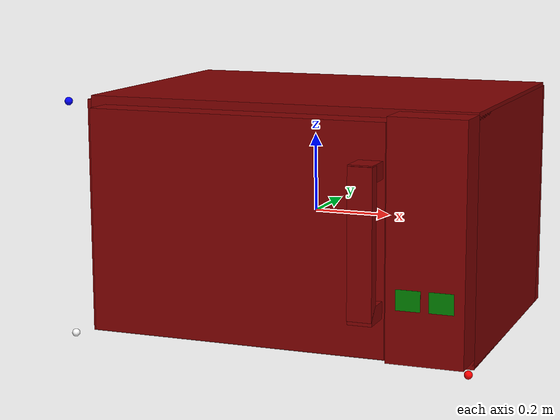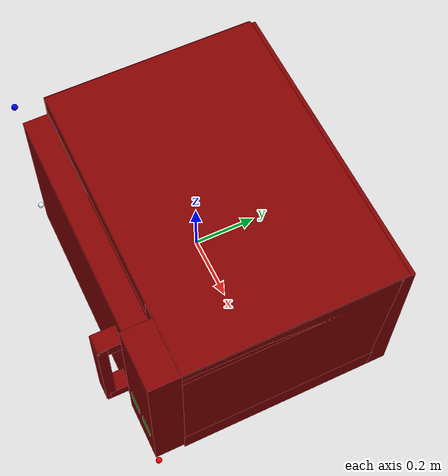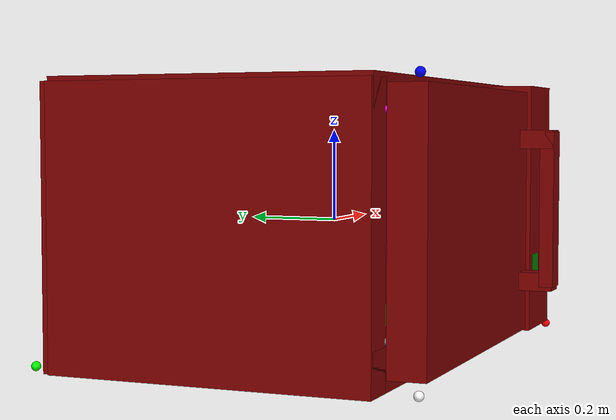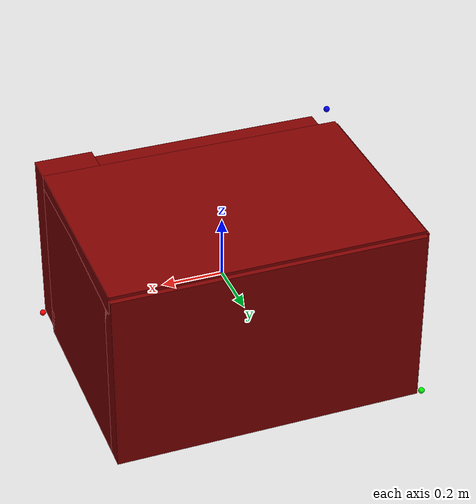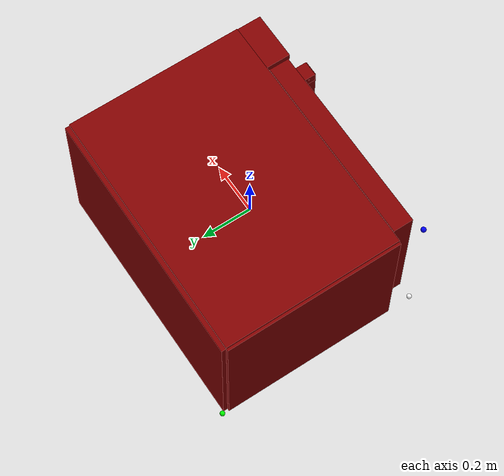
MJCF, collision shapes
<mujoco model="microwave2">
  <asset>
    <texture file="visuals/material_0.png" name="tex-microwave2" type="2d"/>
    <texture type="2d" name="image0" file="visuals/image0.png"/>
    <material name="microwave2" reflectance="0.5" texrepeat="1 1" texture="tex-microwave2" texuniform="false"/>
    <material name="Oven" texture="image0" specular="0.5" shininess="0.25"/>
    <mesh file="visuals/microwave2_0.obj" name="microwave2_0_vis" scale="1 1 1"/>
    <mesh file="visuals/microwave2_door_0.obj" name="microwave2_door_0_vis" scale="1 1 1"/>
  </asset>
  <default>
    <default class="visual">
      <geom conaffinity="0" contype="0" group="1" type="mesh"/>
    </default>
    <default class="collision">
      <geom group="0" rgba="0.5 0 0 0.5"/>
    </default>
  </default>
  <worldbody>
    <body>
      <body name="object">
        <geom solimp="0.998 0.998 0.001" solref="0.001 1" density="100" friction="0.95 0.3 0.1" type="mesh" mesh="microwave2_0_vis" material="Oven" class="visual"/>
        <!-- Back Wall -->
        <geom class="collision" type="box" pos="0 0.4125 0" size="0.5 0.032 0.3"/>
        <!-- Floor -->
        <geom class="collision" type="box" pos="0 0.075 -0.255" size="0.5 0.352 0.045"/>
        <!-- Top -->
        <geom class="collision" type="box" pos="0 0.075 0.275" size="0.5 0.352 0.035"/>
        <!-- Left Wall-->
        <geom class="collision" type="box" pos="-0.47 0.075 0" size="0.04 0.352 0.3"/>
        <!-- Right Wall-->
        <geom class="collision" type="box" pos="0.38 0.075 0" size="0.12 0.352 0.3"/>
        <!-- Keypad -->
        <geom class="collision" type="box" pos="0.405 -0.325 0.015" size="0.095 0.0505 0.29"/>
        <!-- start/stop buttons -->
        <geom class="collision" type="box" pos="0.445 -0.325 -0.12" size="0.03 0.051 0.025" name="start_button" rgba="0.0 0.5 0 0.5"/>
        <geom class="collision" type="box" pos="0.365 -0.325 -0.12" size="0.03 0.051 0.025" name="stop_button" rgba="0.0 0.5 0 0.5"/>
        <geom class="collision" type="cylinder" pos="-0.09 0.05 -0.21" size="0.25 0.005" rgba="0 1 0 0.5" name="tray"/>
        <body name="door">
          <joint axis="0 0 1" limited="true" name="microjoint" range="-90 0" damping="2" frictionloss="2" armature=".01" pos="-0.45 -0.367 0" ref="0"/>
          <geom solimp="0.998 0.998 0.001" solref="0.001 1" density="100" friction="0.95 0.3 0.1" type="mesh" mesh="microwave2_door_0_vis" material="Oven" class="visual"/>
          <!-- Door -->
          <geom class="collision" type="box" pos="-0.075 -0.327 0.01" size="0.38 0.04 0.28"/>
          <!-- Handle Top -->
          <geom class="collision" type="box" pos="0.27 -0.405 0.18" size="0.03 0.038 0.021"/>
          <!-- Handle Bottom -->
          <geom class="collision" type="box" pos="0.27 -0.405 -0.15" size="0.03 0.038 0.021"/>
          <!-- Handle Main -->
          <geom class="collision" type="box" pos="0.27 -0.43 0.018" size="0.03 0.016 0.18" name="door_handle"/>
          <!-- door sites -->
          <site rgba="1 0 0 0" size="0.005" pos="-0.075 -0.37 0.01" name="door_p1"/>
          <site rgba="0 1 0 0" size="0.005" pos="-0.025 -0.37 0.01" name="door_p2"/>
          <site rgba="0 0 1 0" size="0.005" pos="-0.075 -0.37 0.06" name="door_p3"/>
        </body>
        <!-- exterior bounding box points -->
        <site rgba="1 1 1 1" size="0.01" pos="-0.51 -0.37 -0.283" name="ext_p0"/>
        <site rgba="1 0 0 1" size="0.01" pos="0.51 -0.37 -0.283" name="ext_px"/>
        <site rgba="0 1 0 1" size="0.01" pos="-0.51 0.455 -0.283" name="ext_py"/>
        <site rgba="0 0 1 1" size="0.01" pos="-0.51 -0.37 0.305" name="ext_pz"/>
        <!-- interior bounding box points -->
        <site rgba="0.5 0.5 0.5 1" size="0.01" pos="-0.43 -0.27 -0.20" name="int_p0"/>
        <site rgba="1 1 0 1" size="0.01" pos="0.26 -0.27 -0.20" name="int_px"/>
        <site rgba="0 1 1 1" size="0.01" pos="-0.43 0.37 -0.20" name="int_py"/>
        <site rgba="1 0 1 1" size="0.01" pos="-0.43 -0.27 0.24" name="int_pz"/>
      </body>
    </body>
  </worldbody>
</mujoco>
